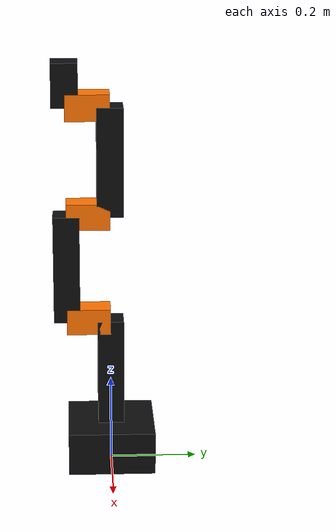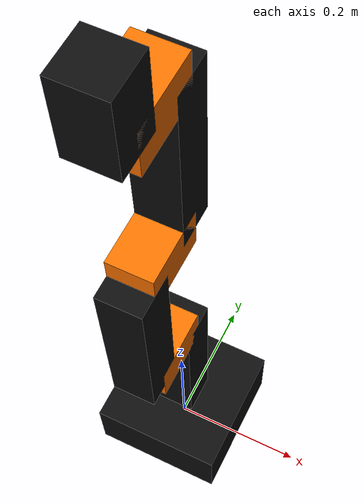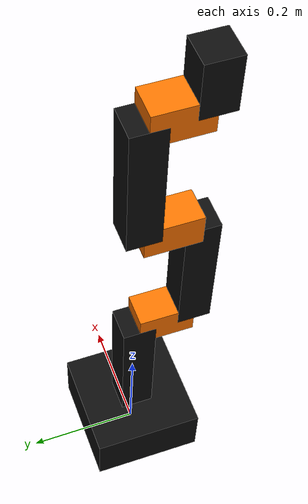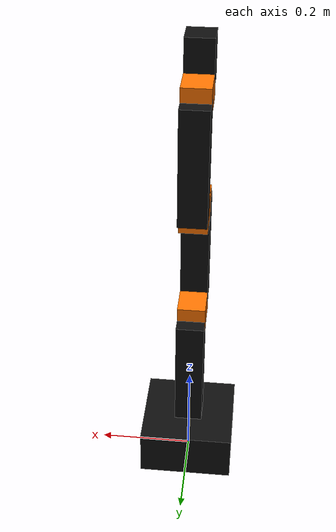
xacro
<?xml version="1.0"?>
<robot xmlns:xacro="http://www.ros.org/wiki/xacro" name="SNTRobot">
    <xacro:arg name="initial_positions_file" default="initial_positions.yaml" />

    <!-- Import SNTRobot urdf file -->
    <xacro:include filename="$(find snt_robot_description)/urdf/SNTRobot.urdf" />

    <!-- Import control_xacro -->
    <xacro:include filename="SNTRobot.ros2_control.xacro" />

    <xacro:SNTRobot_ros2_control name="SNTRobotHW"
        initial_positions_file="$(arg initial_positions_file)"/>

</robot>

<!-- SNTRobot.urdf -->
<!-- |    This document was autogenerated by xacro from ./SNTRobot.urdf.xacro          | -->
<!-- |    EDITING THIS FILE BY HAND IS NOT RECOMMENDED                                 | -->
<robot name="SNTRobot">
  <!-- ====== 몸통의 형태 정의 ====== -->
  <!-- 링크 길이들 -->
  <!-- ====== 재질(색) 정의 ====== -->
  <material name="mat_black">
    <color rgba="0.05 0.05 0.05 1.0"/>
  </material>
  <material name="mat_orange">
    robot

    <color rgba="1.0 0.45 0.0 1.0"/>
  </material>
  <!-- ====== 박스 링크 생성
       링크 프레임 원점은 joint 위치(링크 시작점)에 둠
       박스는 +Z로 뻗도록 z=length/2로 올림
  ====== -->
  <!-- ====== 조인트 매크로(핵심: rpy를 인자로 받는다) ====== -->
  <!-- ====== base ====== -->
  <link name="base_link">
    <visual>
      <origin rpy="0 0 0" xyz="0 0 0.05"/>
      <geometry>
        <box size="0.20 0.20 0.10"/>
      </geometry>
      <material name="mat_black"/>
    </visual>
    <collision>
      <origin rpy="0 0 0" xyz="0 0 0.05"/>
      <geometry>
        <box size="0.20 0.20 0.10"/>
      </geometry>
    </collision>
  </link>
  <!-- ====== links (검/주 반복) ====== -->
  <link name="link1">
    <inertial>
      <origin rpy="0 0 0" xyz="0 0 0"/>
      <mass value="1.0"/>
      <inertia ixx="0.01" ixy="0" ixz="0" iyy="0.01" iyz="0" izz="0.01"/>
    </inertial>
    <visual>
      <origin rpy="0 0 0" xyz="0 0 0.125"/>
      <geometry>
        <box size="0.06 0.06 0.25"/>
      </geometry>
      <material name="mat_black"/>
    </visual>
    <collision>
      <origin rpy="0 0 0" xyz="0 0 0.125"/>
      <geometry>
        <box size="0.06 0.06 0.25"/>
      </geometry>
    </collision>
  </link>
  <link name="link2">
    <inertial>
      <origin rpy="0 0 0" xyz="0 0 0"/>
      <mass value="1.0"/>
      <inertia ixx="0.01" ixy="0" ixz="0" iyy="0.01" iyz="0" izz="0.01"/>
    </inertial>
    <visual>
      <origin rpy="0 0 0" xyz="0 0 0.05"/>
      <geometry>
        <box size="0.06 0.06 0.1"/>
      </geometry>
      <material name="mat_orange"/>
    </visual>
    <collision>
      <origin rpy="0 0 0" xyz="0 0 0.05"/>
      <geometry>
        <box size="0.06 0.06 0.1"/>
      </geometry>
    </collision>
  </link>
  <link name="link3">
    <inertial>
      <origin rpy="0 0 0" xyz="0 0 0"/>
      <mass value="1.0"/>
      <inertia ixx="0.01" ixy="0" ixz="0" iyy="0.01" iyz="0" izz="0.01"/>
    </inertial>
    <visual>
      <origin rpy="0 0 0" xyz="0 0 0.125"/>
      <geometry>
        <box size="0.06 0.06 0.25"/>
      </geometry>
      <material name="mat_black"/>
    </visual>
    <collision>
      <origin rpy="0 0 0" xyz="0 0 0.125"/>
      <geometry>
        <box size="0.06 0.06 0.25"/>
      </geometry>
    </collision>
  </link>
  <link name="link4">
    <inertial>
      <origin rpy="0 0 0" xyz="0 0 0"/>
      <mass value="1.0"/>
      <inertia ixx="0.01" ixy="0" ixz="0" iyy="0.01" iyz="0" izz="0.01"/>
    </inertial>
    <visual>
      <origin rpy="0 0 0" xyz="0 0 0.05"/>
      <geometry>
        <box size="0.06 0.06 0.1"/>
      </geometry>
      <material name="mat_orange"/>
    </visual>
    <collision>
      <origin rpy="0 0 0" xyz="0 0 0.05"/>
      <geometry>
        <box size="0.06 0.06 0.1"/>
      </geometry>
    </collision>
  </link>
  <link name="link5">
    <inertial>
      <origin rpy="0 0 0" xyz="0 0 0"/>
      <mass value="1.0"/>
      <inertia ixx="0.01" ixy="0" ixz="0" iyy="0.01" iyz="0" izz="0.01"/>
    </inertial>
    <visual>
      <origin rpy="0 0 0" xyz="0 0 0.125"/>
      <geometry>
        <box size="0.06 0.06 0.25"/>
      </geometry>
      <material name="mat_black"/>
    </visual>
    <collision>
      <origin rpy="0 0 0" xyz="0 0 0.125"/>
      <geometry>
        <box size="0.06 0.06 0.25"/>
      </geometry>
    </collision>
  </link>
  <link name="link6">
    <inertial>
      <origin rpy="0 0 0" xyz="0 0 0"/>
      <mass value="1.0"/>
      <inertia ixx="0.01" ixy="0" ixz="0" iyy="0.01" iyz="0" izz="0.01"/>
    </inertial>
    <visual>
      <origin rpy="0 0 0" xyz="0 0 0.05"/>
      <geometry>
        <box size="0.06 0.06 0.1"/>
      </geometry>
      <material name="mat_orange"/>
    </visual>
    <collision>
      <origin rpy="0 0 0" xyz="0 0 0.05"/>
      <geometry>
        <box size="0.06 0.06 0.1"/>
      </geometry>
    </collision>
  </link>
  <link name="link7">
    <inertial>
      <origin rpy="0 0 0" xyz="0 0 0"/>
      <mass value="1.0"/>
      <inertia ixx="0.01" ixy="0" ixz="0" iyy="0.01" iyz="0" izz="0.01"/>
    </inertial>
    <visual>
      <origin rpy="0 0 0" xyz="0 0 0.05"/>
      <geometry>
        <box size="0.06 0.06 0.1"/>
      </geometry>
      <material name="mat_black"/>
    </visual>
    <collision>
      <origin rpy="0 0 0" xyz="0 0 0.05"/>
      <geometry>
        <box size="0.06 0.06 0.1"/>
      </geometry>
    </collision>
  </link>
  <joint name="joint1" type="revolute">
    <parent link="base_link"/>
    <child link="link1"/>
    <origin rpy="0 0 0" xyz="0 0 0.10"/>
    <axis xyz="0 0 1"/>
    <limit effort="50" lower="-3.1416" upper="3.1416" velocity="2.0"/>
    <dynamics damping="0.1" friction="0.0"/>
  </joint>
  <joint name="joint2" type="revolute">
    <parent link="link1"/>
    <child link="link2"/>
    <origin rpy="1.5708 0 0" xyz="0 0 0.25"/>
    <axis xyz="0 0 -1"/>
    <limit effort="50" lower="-3.1416" upper="3.1416" velocity="2.0"/>
    <dynamics damping="0.1" friction="0.0"/>
  </joint>
  <joint name="fix_joint" type="fixed">
    <parent link="link2"/>
    <child link="link3"/>
    <origin rpy="-1.5708 0 0" xyz="0 0 0.1"/>
  </joint>
  <joint name="joint3" type="revolute">
    <parent link="link3"/>
    <child link="link4"/>
    <origin rpy="-1.5708 0 0" xyz="0 0 0.25"/>
    <axis xyz="0 0 1"/>
    <limit effort="50" lower="-3.1416" upper="3.1416" velocity="2.0"/>
    <dynamics damping="0.1" friction="0.0"/>
  </joint>
  <joint name="joint4" type="revolute">
    <parent link="link4"/>
    <child link="link5"/>
    <origin rpy="1.5708 0 0" xyz="0 0 0.1"/>
    <axis xyz="0 0 1"/>
    <limit effort="50" lower="-3.1416" upper="3.1416" velocity="2.0"/>
    <dynamics damping="0.1" friction="0.0"/>
  </joint>
  <joint name="joint5" type="revolute">
    <parent link="link5"/>
    <child link="link6"/>
    <origin rpy="1.5708 0 0" xyz="0 0 0.25"/>
    <axis xyz="0 0 -1"/>
    <limit effort="50" lower="-3.1416" upper="3.1416" velocity="2.0"/>
    <dynamics damping="0.1" friction="0.0"/>
  </joint>
  <joint name="joint6" type="revolute">
    <parent link="link6"/>
    <child link="link7"/>
    <origin rpy="-1.5708 0 0" xyz="0 0 0.1"/>
    <axis xyz="0 0 1"/>
    <limit effort="50" lower="-3.1416" upper="3.1416" velocity="2.0"/>
    <dynamics damping="0.1" friction="0.0"/>
  </joint>
</robot>
